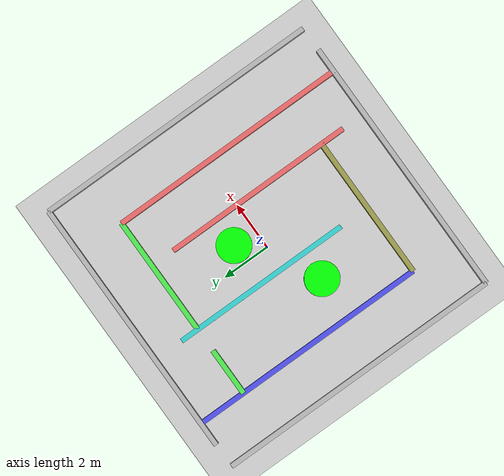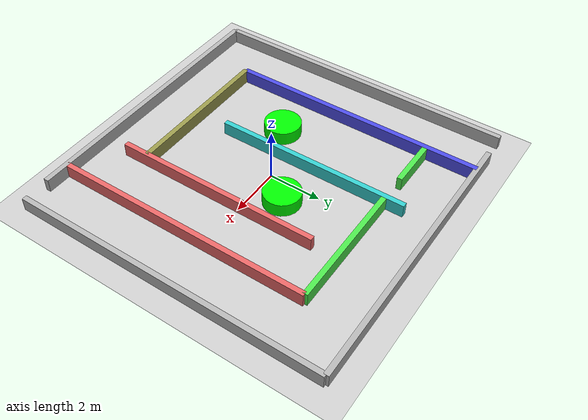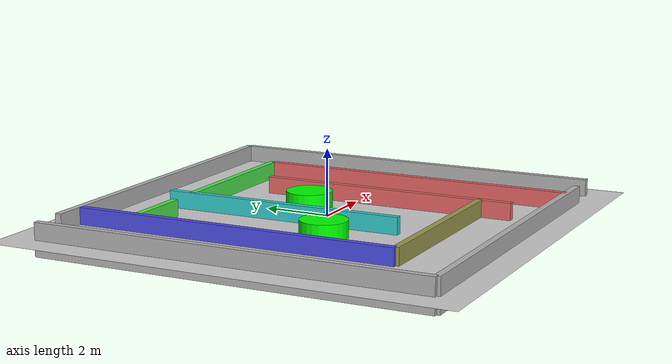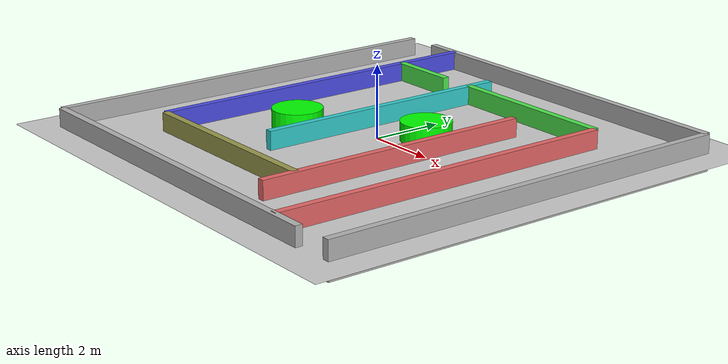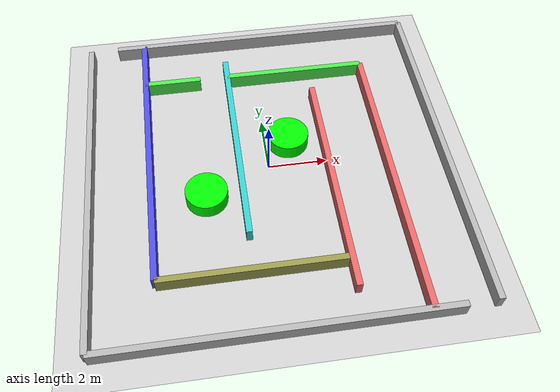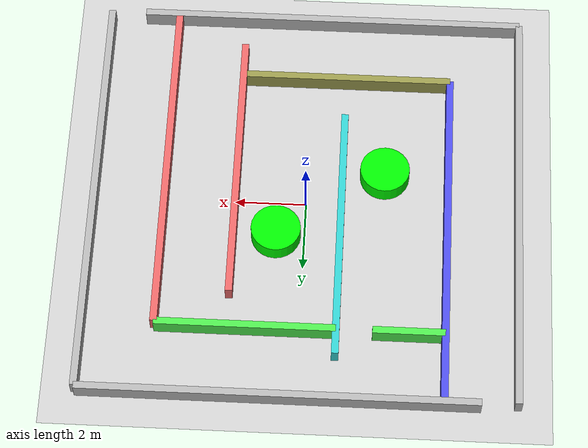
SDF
<?xml version="1.0" ?>
<sdf version="1.6">
  <world name="maze_world">

    <!-- Lighting -->
    <include>
      <uri>model://sun</uri>
    </include>

    <!-- Ground Plane -->
    <include>
      <uri>model://ground_plane</uri>
    </include>

        <!-- Outer Bounding Walls (12x12 meters) -->
    <model name="outer_wall_north">
      <static>true</static>
      <pose>0.5 6 0 0 0 0</pose>
      <link name="link">
        <collision name="collision">
          <geometry><box><size>11 0.2 1</size></box></geometry>
        </collision>
        <visual name="visual">
          <geometry><box><size>11 0.2 1</size></box></geometry>
          <material><ambient>0.7 0.7 0.7 1</ambient></material>
        </visual>
      </link>
    </model>

    <model name="outer_wall_south">
      <static>true</static>
      <pose>-0.5 -6 0 0 0 0</pose>
      <link name="link">
        <collision name="collision">
          <geometry><box><size>11 0.2 1</size></box></geometry>
        </collision>
        <visual name="visual">
          <geometry><box><size>11 0.2 1</size></box></geometry>
          <material><ambient>0.7 0.7 0.7 1</ambient></material>
        </visual>
      </link>
    </model>

    <model name="outer_wall_east">
      <static>true</static>
      <pose>6 0 0 0 0 0</pose>
      <link name="link">
        <collision name="collision">
          <geometry><box><size>0.2 12 1</size></box></geometry>
        </collision>
        <visual name="visual">
          <geometry><box><size>0.2 12 1</size></box></geometry>
          <material><ambient>0.7 0.7 0.7 1</ambient></material>
        </visual>
      </link>
    </model>

    <model name="outer_wall_west">
      <static>true</static>
      <pose>-6 0 0 0 0 0</pose>
      <link name="link">
        <collision name="collision">
          <geometry><box><size>0.2 12 1</size></box></geometry>
        </collision>
        <visual name="visual">
          <geometry><box><size>0.2 12 1</size></box></geometry>
          <material><ambient>0.7 0.7 0.7 1</ambient></material>
        </visual>
      </link>
    </model>

    <!-- Inner Maze Wall 1: Left Vertical -->
<model name="inner_wall_left">
  <static>true</static>
  <pose>-4 1 0 0 0 0</pose>  <!-- X: Left side -->
  <link name="link">
    <collision name="collision">
      <geometry><box><size>0.2 10 1</size></box></geometry>
    </collision>
    <visual name="visual">
      <geometry><box><size>0.2 10 1</size></box></geometry>
      <material><ambient>0.3 0.3 0.9 1</ambient></material>
    </visual>
  </link>
</model>

<!-- Inner Maze Wall 2: Top Horizontal -->
<model name="inner_wall_top_horizontal">
  <static>true</static>
  <pose>-3 4 0 0 0 0</pose>
  <link name="link">
    <collision name="collision">
      <geometry><box><size>2 0.2 1</size></box></geometry>
    </collision>
    <visual name="visual">
      <geometry><box><size>2 0.2 1</size></box></geometry>
      <material><ambient>0.3 0.9 0.3 1</ambient></material>
    </visual>
  </link>
</model>

<!-- Inner Maze Wall 2: Top Horizontal -->
<model name="inner_wall_top_horizontal2">
  <static>true</static>
  <pose>1.5 4 0 0 0 0</pose>
  <link name="link">
    <collision name="collision">
      <geometry><box><size>5 0.2 1</size></box></geometry>
    </collision>
    <visual name="visual">
      <geometry><box><size>5 0.2 1</size></box></geometry>
      <material><ambient>0.3 0.9 0.3 1</ambient></material>
    </visual>
  </link>
</model>

<!-- Inner Maze Wall 3: Right Vertical -->
<model name="inner_wall_right">
  <static>true</static>
  <pose>4 -1 0 0 0 0</pose>
  <link name="link">
    <collision name="collision">
      <geometry><box><size>0.2 10 1</size></box></geometry>
    </collision>
    <visual name="visual">
      <geometry><box><size>0.2 10 1</size></box></geometry>
      <material><ambient>0.9 0.4 0.4 1</ambient></material>
    </visual>
  </link>
</model>

<!-- Inner Maze Wall 3: Right Vertical -->
<model name="inner_wall_right2">
  <static>true</static>
  <pose>2 -1 0 0 0 0</pose>
  <link name="link">
    <collision name="collision">
      <geometry><box><size>0.2 8 1</size></box></geometry>
    </collision>
    <visual name="visual">
      <geometry><box><size>0.2 8 1</size></box></geometry>
      <material><ambient>0.9 0.4 0.4 1</ambient></material>
    </visual>
  </link>
</model>

<!-- Inner Maze Wall 4: Bottom Horizontal on Right -->
<model name="inner_wall_bottom_right">
  <static>true</static>
  <pose>-1 -4 0 0 0 0</pose>
  <link name="link">
    <collision name="collision">
      <geometry><box><size>6 0.2 1</size></box></geometry>
    </collision>
    <visual name="visual">
      <geometry><box><size>6 0.2 1</size></box></geometry>
      <material><ambient>0.6 0.6 0.3 1</ambient></material>
    </visual>
  </link>
</model>

<!-- Inner Maze Wall 5: Center Vertical -->
<model name="inner_wall_center">
  <static>true</static>
  <pose>-1 1.0 0 0 0 0</pose>
  <link name="link">
    <collision name="collision">
      <geometry><box><size>0.2 7.5 1</size></box></geometry>
    </collision>
    <visual name="visual">
      <geometry><box><size>0.2 7.5 1</size></box></geometry>
      <material><ambient>0.2 0.8 0.8 1</ambient></material>
    </visual>
  </link>
</model>

<!-- Inner Maze Wall 6: Bottom Horizontal on Left -->
   <model name="obstacle1">
    <static>true</static>
    <pose>0.8 1 0 0 0 0</pose>
    <link name="link">
      <collision name="collision">
        <geometry>
          <cylinder>
            <radius>0.7</radius>
            <length>1</length>
          </cylinder>
        </geometry>
      </collision>
      <visual name="marker">
        <geometry>
          <cylinder>
            <radius>0.7</radius>
            <length>1.0</length>
          </cylinder>
        </geometry>
        <material>
          <ambient>0 1 0 1</ambient>
        </material>
      </visual>
    </link>
  </model>

<!-- Inner Maze Wall 6: Bottom Horizontal on Left -->
   <model name="obstacle2">
    <static>true</static>
    <pose>-2.2 -1 0 0 0 0</pose>
    <link name="link">
      <collision name="collision">
        <geometry>
          <cylinder>
            <radius>0.7</radius>
            <length>1</length>
          </cylinder>
        </geometry>
      </collision>
      <visual name="marker">
        <geometry>
          <cylinder>
            <radius>0.7</radius>
            <length>1.0</length>
          </cylinder>
        </geometry>
        <material>
          <ambient>0 1 0 1</ambient>
        </material>
      </visual>
    </link>
  </model>

  </world>
</sdf>
